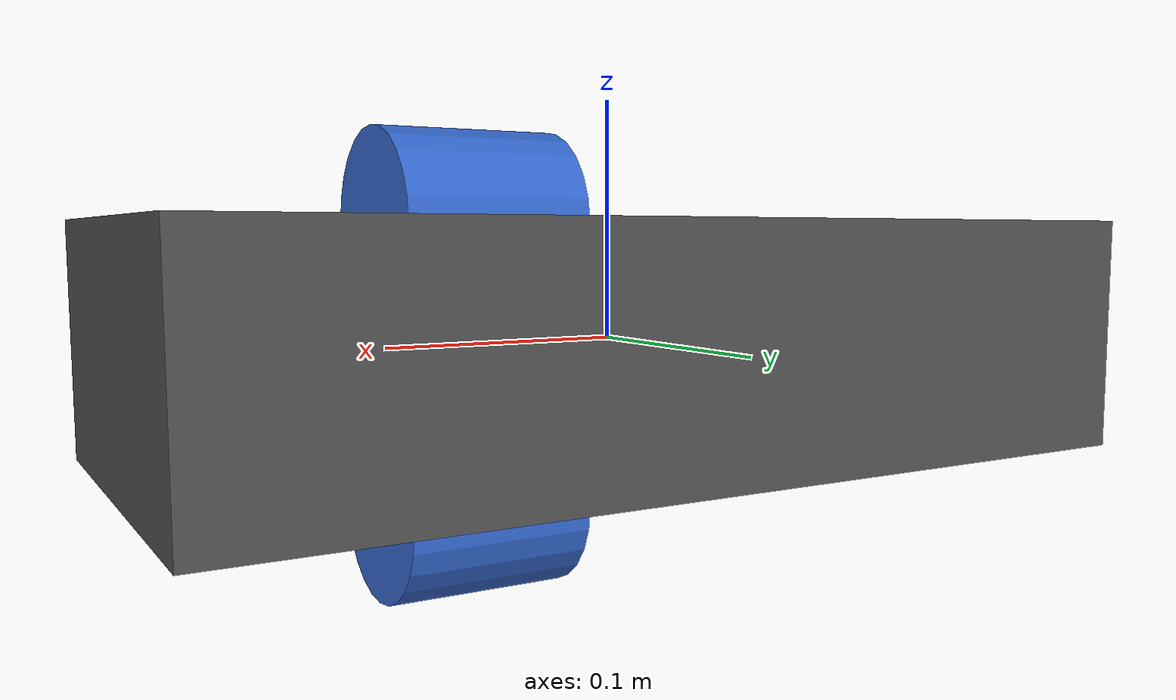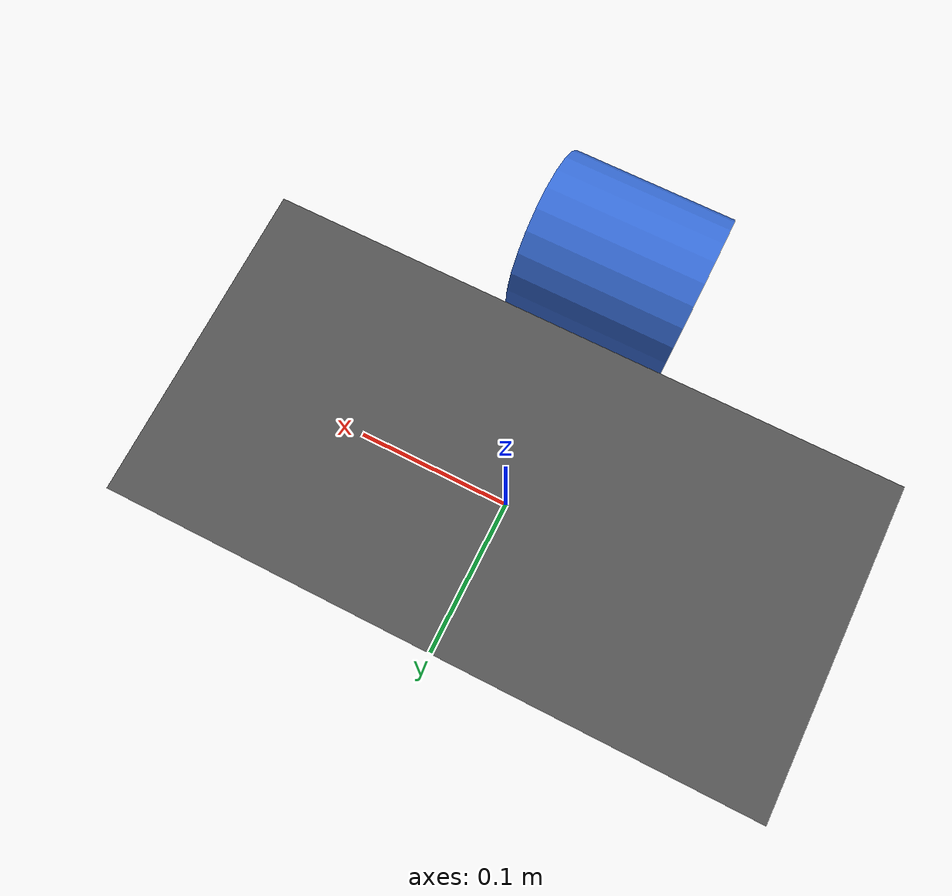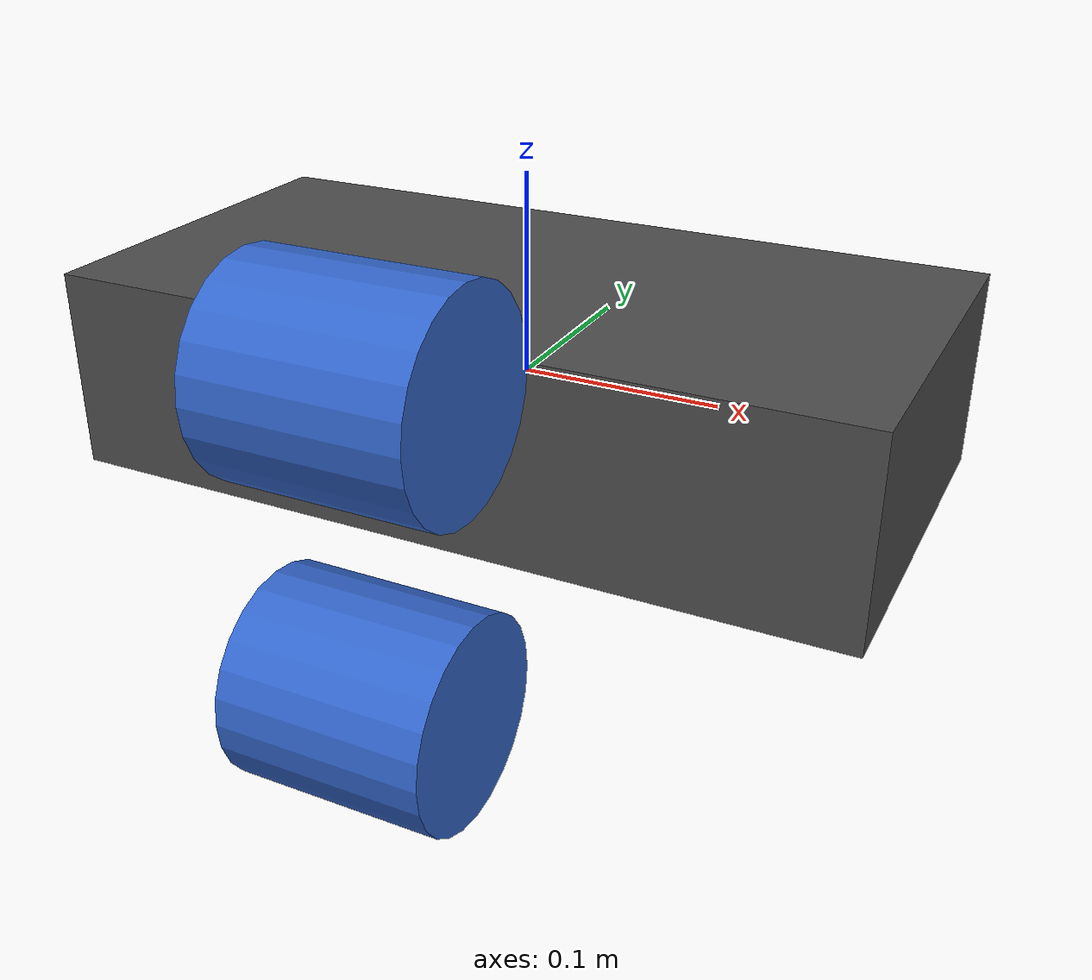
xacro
<?xml version="1.0"?>
<robot xmlns:xacro="http://www.ros.org/wiki/xacro" name="wec_dyno">

  <!-- ═══════════════════════════════════════════════════════════════════════
       Material definitions
  ══════════════════════════════════════════════════════════════════════════ -->
  <material name="dark_grey">
    <color rgba="0.3 0.3 0.3 1.0"/>
  </material>
  <material name="blue">
    <color rgba="0.2 0.4 0.8 1.0"/>
  </material>

  <!-- ═══════════════════════════════════════════════════════════════════════
       Links
  ══════════════════════════════════════════════════════════════════════════ -->

  <!-- base_link: fixed to the test bench frame -->
  <link name="base_link">
    <visual>
      <geometry>
        <box size="0.4 0.2 0.1"/>
      </geometry>
      <material name="dark_grey"/>
    </visual>
    <inertial>
      <mass value="10.0"/>
      <inertia ixx="0.1" ixy="0" ixz="0" iyy="0.1" iyz="0" izz="0.1"/>
    </inertial>
  </link>

  <!-- hydro_link: rotor of Motor 0 (hydro emulator) -->
  <link name="hydro_link">
    <visual>
      <geometry>
        <cylinder radius="0.05" length="0.1"/>
      </geometry>
      <material name="blue"/>
    </visual>
    <inertial>
      <!-- Placeholder inertia. Replace with actual motor rotor inertia. -->
      <mass value="1.0"/>
      <inertia ixx="0.001" ixy="0" ixz="0" iyy="0.001" iyz="0" izz="0.002"/>
    </inertial>
  </link>

  <!-- pto_link: rotor of Motor 1 (PTO) -->
  <link name="pto_link">
    <visual>
      <geometry>
        <cylinder radius="0.05" length="0.1"/>
      </geometry>
      <material name="blue"/>
    </visual>
    <inertial>
      <!-- Placeholder inertia. Replace with actual motor rotor inertia. -->
      <mass value="1.0"/>
      <inertia ixx="0.001" ixy="0" ixz="0" iyy="0.001" iyz="0" izz="0.002"/>
    </inertial>
  </link>

  <!-- ═══════════════════════════════════════════════════════════════════════
       Joints
  ══════════════════════════════════════════════════════════════════════════ -->

  <!-- hydro_joint: Motor 0 (axis0) — hydro force emulator -->
  <joint name="hydro_joint" type="continuous">
    <parent link="base_link"/>
    <child link="hydro_link"/>
    <origin xyz="0 -0.15 0.05" rpy="0 1.5708 0"/>
    <!-- Rotation axis: X after RPY rotation = shaft axis -->
    <axis xyz="0 0 1"/>
  </joint>

  <!-- pto_joint: Motor 1 (axis1) — PTO machine -->
  <joint name="pto_joint" type="continuous">
    <parent link="hydro_link"/>
    <child link="pto_link"/>
    <origin xyz="0.15 0 0" rpy="0 0 0"/>
    <axis xyz="0 0 1"/>
  </joint>

  <!-- ═══════════════════════════════════════════════════════════════════════
       ros2_control — Hardware interface
  ══════════════════════════════════════════════════════════════════════════ -->

  <ros2_control name="ODriveSystem" type="system">
    <hardware>
      <plugin>odrive_ros2_control_plugin/ODriveHardwareInterface</plugin>
      <param name="can_interface">can0</param>
    </hardware>

    <!-- Motor 0: hydro emulator (axis0, node_id=0) -->
    <joint name="hydro_joint">
      <param name="node_id">0</param>
      <!-- Effort interface: ros2_control sends torque commands to the ODrive.
           The hydro_effort_controller writes τ_hydro = f(v_ref, v_actual). -->
      <command_interface name="effort">
        <param name="min">-200.0</param>
        <param name="max">200.0</param>
      </command_interface>
      <!-- State interfaces: position, velocity, effort read from ODrive encoder + current. -->
      <state_interface name="position"/>
      <state_interface name="velocity"/>
      <state_interface name="effort"/>
    </joint>

    <!-- Motor 1: PTO machine (axis1, node_id=1) -->
    <joint name="pto_joint">
      <param name="node_id">1</param>
      <!-- Effort interface: pto_controller_node sends τ_pto commands. -->
      <command_interface name="effort">
        <param name="min">-200.0</param>
        <param name="max">200.0</param>
      </command_interface>
      <state_interface name="position"/>
      <state_interface name="velocity"/>
      <!-- Effort state = measured torque = τ_meas → feeds back to Chrono (HIL) -->
      <state_interface name="effort"/>
    </joint>
  </ros2_control>

</robot>
